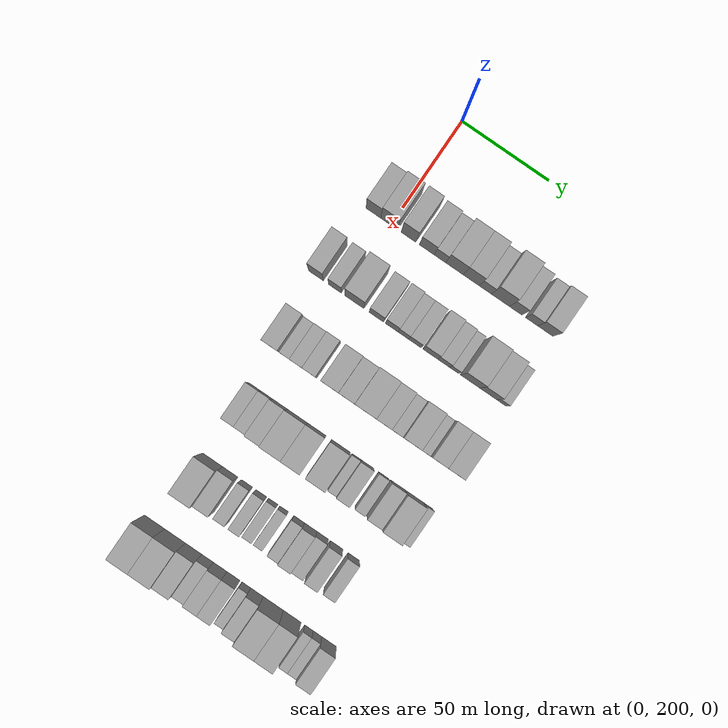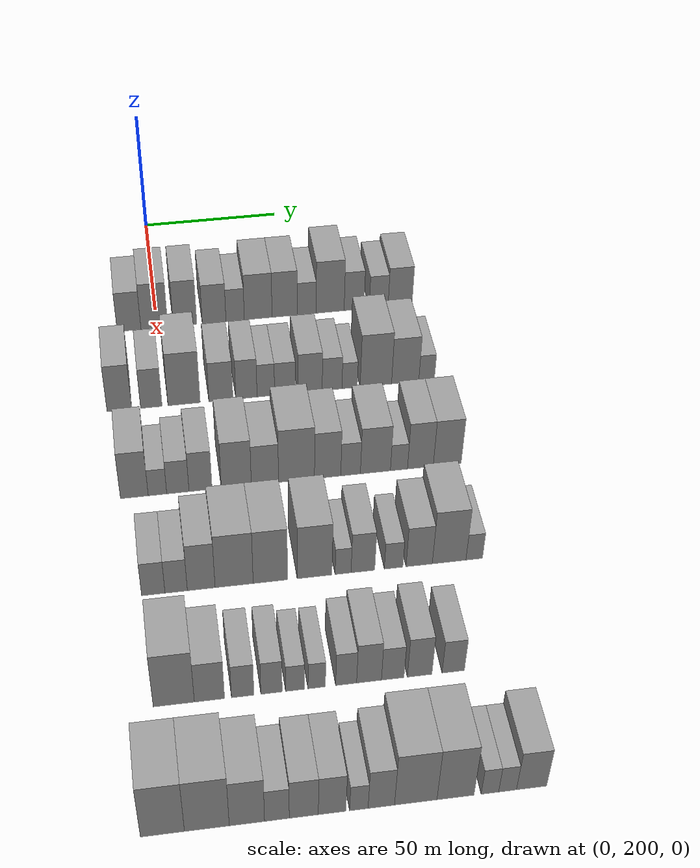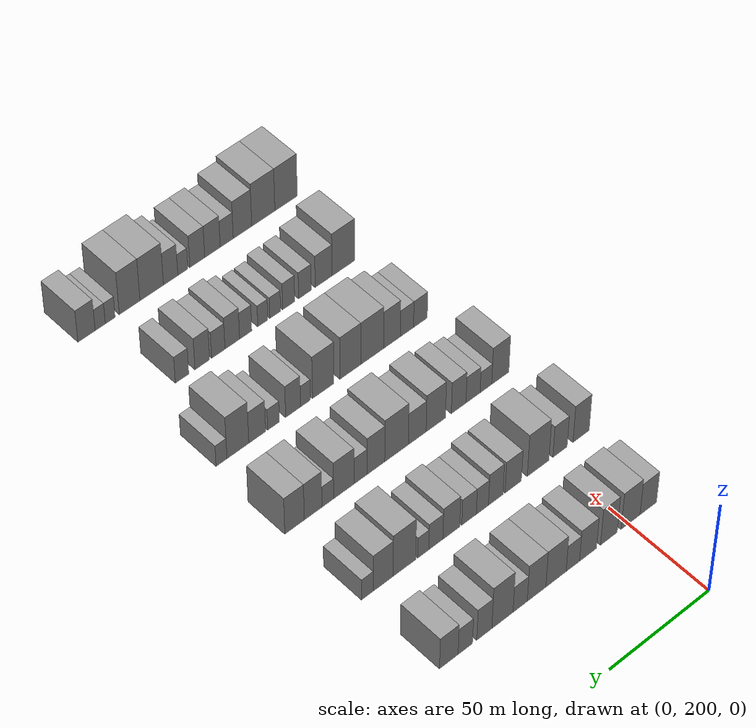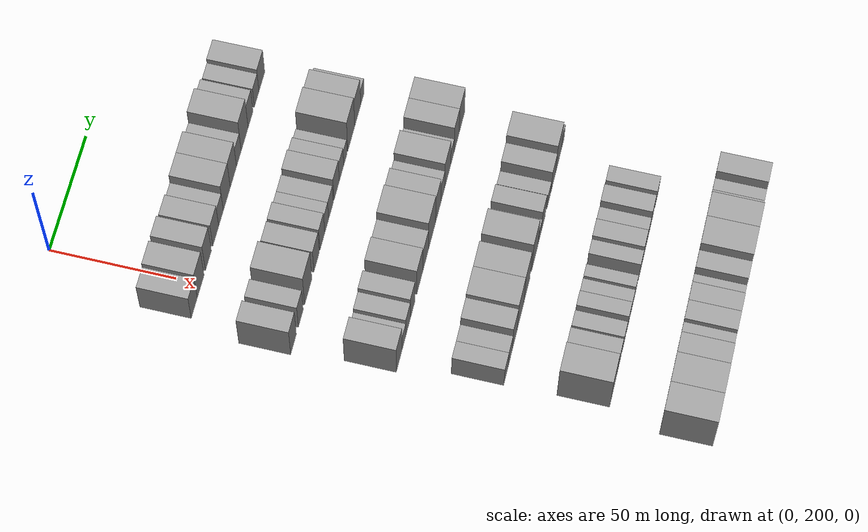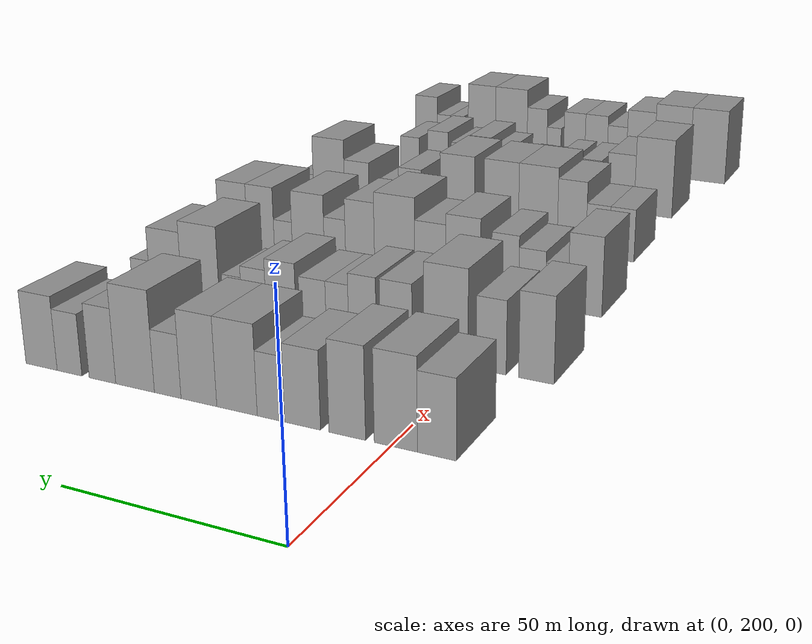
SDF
<sdf version="1.6">
 <world name="default">
  <model name="building_93">
   <static>1</static>
   <pose>50.0000 189.8528 0 0.000000 0.000000 0.000000</pose>
   <link name="link">
    <pose>0 0 9.00 0 0 0</pose>
    <collision name="collision"><geometry><box><size>20.0000 8.5246 18.0000</size></box></geometry></collision>
    <visual name="visual">
     <cast_shadows>0</cast_shadows>
     <geometry><box><size>20.0000 8.5246 18.0000</size></box></geometry>
     <material>
      <script>
       <uri>model://grey_wall/materials/scripts</uri>
       <uri>model://grey_wall/materials/textures</uri>
       <name>vrc/grey_wall</name>
      </script>
     </material>
    </visual>
   </link>
  </model>
  <model name="building_94">
   <static>1</static>
   <pose>50.0000 198.9547 0 0.000000 0.000000 0.000000</pose>
   <link name="link">
    <pose>0 0 10.50 0 0 0</pose>
    <collision name="collision"><geometry><box><size>20.0000 9.6792 21.0000</size></box></geometry></collision>
    <visual name="visual">
     <cast_shadows>0</cast_shadows>
     <geometry><box><size>20.0000 9.6792 21.0000</size></box></geometry>
     <material>
      <script>
       <uri>model://grey_wall/materials/scripts</uri>
       <uri>model://grey_wall/materials/textures</uri>
       <name>vrc/grey_wall</name>
      </script>
     </material>
    </visual>
   </link>
  </model>
  <model name="building_95">
   <static>1</static>
   <pose>50.0000 210.0387 0 0.000000 0.000000 0.000000</pose>
   <link name="link">
    <pose>0 0 10.50 0 0 0</pose>
    <collision name="collision"><geometry><box><size>20.0000 8.4889 21.0000</size></box></geometry></collision>
    <visual name="visual">
     <cast_shadows>0</cast_shadows>
     <geometry><box><size>20.0000 8.4889 21.0000</size></box></geometry>
     <material>
      <script>
       <uri>model://grey_wall/materials/scripts</uri>
       <uri>model://grey_wall/materials/textures</uri>
       <name>vrc/grey_wall</name>
      </script>
     </material>
    </visual>
   </link>
  </model>
  <model name="building_96">
   <static>1</static>
   <pose>50.0000 220.5793 0 0.000000 0.000000 0.000000</pose>
   <link name="link">
    <pose>0 0 9.00 0 0 0</pose>
    <collision name="collision"><geometry><box><size>20.0000 8.5923 18.0000</size></box></geometry></collision>
    <visual name="visual">
     <cast_shadows>0</cast_shadows>
     <geometry><box><size>20.0000 8.5923 18.0000</size></box></geometry>
     <material>
      <script>
       <uri>model://grey_wall/materials/scripts</uri>
       <uri>model://grey_wall/materials/textures</uri>
       <name>vrc/grey_wall</name>
      </script>
     </material>
    </visual>
   </link>
  </model>
  <model name="building_97">
   <static>1</static>
   <pose>50.0000 228.2194 0 0.000000 0.000000 0.000000</pose>
   <link name="link">
    <pose>0 0 7.50 0 0 0</pose>
    <collision name="collision"><geometry><box><size>20.0000 6.6878 15.0000</size></box></geometry></collision>
    <visual name="visual">
     <cast_shadows>0</cast_shadows>
     <geometry><box><size>20.0000 6.6878 15.0000</size></box></geometry>
     <material>
      <script>
       <uri>model://grey_wall/materials/scripts</uri>
       <uri>model://grey_wall/materials/textures</uri>
       <name>vrc/grey_wall</name>
      </script>
     </material>
    </visual>
   </link>
  </model>
  <model name="building_98">
   <static>1</static>
   <pose>50.0000 236.6185 0 0.000000 0.000000 0.000000</pose>
   <link name="link">
    <pose>0 0 10.50 0 0 0</pose>
    <collision name="collision"><geometry><box><size>20.0000 10.1104 21.0000</size></box></geometry></collision>
    <visual name="visual">
     <cast_shadows>0</cast_shadows>
     <geometry><box><size>20.0000 10.1104 21.0000</size></box></geometry>
     <material>
      <script>
       <uri>model://grey_wall/materials/scripts</uri>
       <uri>model://grey_wall/materials/textures</uri>
       <name>vrc/grey_wall</name>
      </script>
     </material>
    </visual>
   </link>
  </model>
  <model name="building_99">
   <static>1</static>
   <pose>50.0000 246.2642 0 0.000000 0.000000 0.000000</pose>
   <link name="link">
    <pose>0 0 10.50 0 0 0</pose>
    <collision name="collision"><geometry><box><size>20.0000 9.1811 21.0000</size></box></geometry></collision>
    <visual name="visual">
     <cast_shadows>0</cast_shadows>
     <geometry><box><size>20.0000 9.1811 21.0000</size></box></geometry>
     <material>
      <script>
       <uri>model://grey_wall/materials/scripts</uri>
       <uri>model://grey_wall/materials/textures</uri>
       <name>vrc/grey_wall</name>
      </script>
     </material>
    </visual>
   </link>
  </model>
  <model name="building_100">
   <static>1</static>
   <pose>50.0000 254.3415 0 0.000000 0.000000 0.000000</pose>
   <link name="link">
    <pose>0 0 7.50 0 0 0</pose>
    <collision name="collision"><geometry><box><size>20.0000 6.9734 15.0000</size></box></geometry></collision>
    <visual name="visual">
     <cast_shadows>0</cast_shadows>
     <geometry><box><size>20.0000 6.9734 15.0000</size></box></geometry>
     <material>
      <script>
       <uri>model://grey_wall/materials/scripts</uri>
       <uri>model://grey_wall/materials/textures</uri>
       <name>vrc/grey_wall</name>
      </script>
     </material>
    </visual>
   </link>
  </model>
  <model name="building_101">
   <static>1</static>
   <pose>50.0000 263.0122 0 0.000000 0.000000 0.000000</pose>
   <link name="link">
    <pose>0 0 12.00 0 0 0</pose>
    <collision name="collision"><geometry><box><size>20.0000 10.3681 24.0000</size></box></geometry></collision>
    <visual name="visual">
     <cast_shadows>0</cast_shadows>
     <geometry><box><size>20.0000 10.3681 24.0000</size></box></geometry>
     <material>
      <script>
       <uri>model://grey_wall/materials/scripts</uri>
       <uri>model://grey_wall/materials/textures</uri>
       <name>vrc/grey_wall</name>
      </script>
     </material>
    </visual>
   </link>
  </model>
  <model name="building_102">
   <static>1</static>
   <pose>50.0000 271.8606 0 0.000000 0.000000 0.000000</pose>
   <link name="link">
    <pose>0 0 9.00 0 0 0</pose>
    <collision name="collision"><geometry><box><size>20.0000 7.3289 18.0000</size></box></geometry></collision>
    <visual name="visual">
     <cast_shadows>0</cast_shadows>
     <geometry><box><size>20.0000 7.3289 18.0000</size></box></geometry>
     <material>
      <script>
       <uri>model://grey_wall/materials/scripts</uri>
       <uri>model://grey_wall/materials/textures</uri>
       <name>vrc/grey_wall</name>
      </script>
     </material>
    </visual>
   </link>
  </model>
  <model name="building_103">
   <static>1</static>
   <pose>50.0000 281.0077 0 0.000000 0.000000 0.000000</pose>
   <link name="link">
    <pose>0 0 7.50 0 0 0</pose>
    <collision name="collision"><geometry><box><size>20.0000 6.9652 15.0000</size></box></geometry></collision>
    <visual name="visual">
     <cast_shadows>0</cast_shadows>
     <geometry><box><size>20.0000 6.9652 15.0000</size></box></geometry>
     <material>
      <script>
       <uri>model://grey_wall/materials/scripts</uri>
       <uri>model://grey_wall/materials/textures</uri>
       <name>vrc/grey_wall</name>
      </script>
     </material>
    </visual>
   </link>
  </model>
  <model name="building_104">
   <static>1</static>
   <pose>50.0000 288.9499 0 0.000000 0.000000 0.000000</pose>
   <link name="link">
    <pose>0 0 9.00 0 0 0</pose>
    <collision name="collision"><geometry><box><size>20.0000 8.9192 18.0000</size></box></geometry></collision>
    <visual name="visual">
     <cast_shadows>0</cast_shadows>
     <geometry><box><size>20.0000 8.9192 18.0000</size></box></geometry>
     <material>
      <script>
       <uri>model://grey_wall/materials/scripts</uri>
       <uri>model://grey_wall/materials/textures</uri>
       <name>vrc/grey_wall</name>
      </script>
     </material>
    </visual>
   </link>
  </model>
  <model name="building_232">
   <static>1</static>
   <pose>90.0000 184.2462 0 0.000000 0.000000 0.000000</pose>
   <link name="link">
    <pose>0 0 10.50 0 0 0</pose>
    <collision name="collision"><geometry><box><size>20.0000 8.4179 21.0000</size></box></geometry></collision>
    <visual name="visual">
     <cast_shadows>0</cast_shadows>
     <geometry><box><size>20.0000 8.4179 21.0000</size></box></geometry>
     <material>
      <script>
       <uri>model://grey_wall/materials/scripts</uri>
       <uri>model://grey_wall/materials/textures</uri>
       <name>vrc/grey_wall</name>
      </script>
     </material>
    </visual>
   </link>
  </model>
  <model name="building_233">
   <static>1</static>
   <pose>90.0000 195.1250 0 0.000000 0.000000 0.000000</pose>
   <link name="link">
    <pose>0 0 9.00 0 0 0</pose>
    <collision name="collision"><geometry><box><size>20.0000 7.3397 18.0000</size></box></geometry></collision>
    <visual name="visual">
     <cast_shadows>0</cast_shadows>
     <geometry><box><size>20.0000 7.3397 18.0000</size></box></geometry>
     <material>
      <script>
       <uri>model://grey_wall/materials/scripts</uri>
       <uri>model://grey_wall/materials/textures</uri>
       <name>vrc/grey_wall</name>
      </script>
     </material>
    </visual>
   </link>
  </model>
  <model name="building_234">
   <static>1</static>
   <pose>90.0000 206.3223 0 0.000000 0.000000 0.000000</pose>
   <link name="link">
    <pose>0 0 12.00 0 0 0</pose>
    <collision name="collision"><geometry><box><size>20.0000 11.0550 24.0000</size></box></geometry></collision>
    <visual name="visual">
     <cast_shadows>0</cast_shadows>
     <geometry><box><size>20.0000 11.0550 24.0000</size></box></geometry>
     <material>
      <script>
       <uri>model://grey_wall/materials/scripts</uri>
       <uri>model://grey_wall/materials/textures</uri>
       <name>vrc/grey_wall</name>
      </script>
     </material>
    </visual>
   </link>
  </model>
  <model name="building_235">
   <static>1</static>
   <pose>90.0000 218.9924 0 0.000000 0.000000 0.000000</pose>
   <link name="link">
    <pose>0 0 9.00 0 0 0</pose>
    <collision name="collision"><geometry><box><size>20.0000 8.2851 18.0000</size></box></geometry></collision>
    <visual name="visual">
     <cast_shadows>0</cast_shadows>
     <geometry><box><size>20.0000 8.2851 18.0000</size></box></geometry>
     <material>
      <script>
       <uri>model://grey_wall/materials/scripts</uri>
       <uri>model://grey_wall/materials/textures</uri>
       <name>vrc/grey_wall</name>
      </script>
     </material>
    </visual>
   </link>
  </model>
  <model name="building_236">
   <static>1</static>
   <pose>90.0000 227.7910 0 0.000000 0.000000 0.000000</pose>
   <link name="link">
    <pose>0 0 9.00 0 0 0</pose>
    <collision name="collision"><geometry><box><size>20.0000 7.3121 18.0000</size></box></geometry></collision>
    <visual name="visual">
     <cast_shadows>0</cast_shadows>
     <geometry><box><size>20.0000 7.3121 18.0000</size></box></geometry>
     <material>
      <script>
       <uri>model://grey_wall/materials/scripts</uri>
       <uri>model://grey_wall/materials/textures</uri>
       <name>vrc/grey_wall</name>
      </script>
     </material>
    </visual>
   </link>
  </model>
  <model name="building_237">
   <static>1</static>
   <pose>90.0000 234.4759 0 0.000000 0.000000 0.000000</pose>
   <link name="link">
    <pose>0 0 7.50 0 0 0</pose>
    <collision name="collision"><geometry><box><size>20.0000 6.0578 15.0000</size></box></geometry></collision>
    <visual name="visual">
     <cast_shadows>0</cast_shadows>
     <geometry><box><size>20.0000 6.0578 15.0000</size></box></geometry>
     <material>
      <script>
       <uri>model://grey_wall/materials/scripts</uri>
       <uri>model://grey_wall/materials/textures</uri>
       <name>vrc/grey_wall</name>
      </script>
     </material>
    </visual>
   </link>
  </model>
  <model name="building_238">
   <static>1</static>
   <pose>90.0000 241.1031 0 0.000000 0.000000 0.000000</pose>
   <link name="link">
    <pose>0 0 7.50 0 0 0</pose>
    <collision name="collision"><geometry><box><size>20.0000 7.1966 15.0000</size></box></geometry></collision>
    <visual name="visual">
     <cast_shadows>0</cast_shadows>
     <geometry><box><size>20.0000 7.1966 15.0000</size></box></geometry>
     <material>
      <script>
       <uri>model://grey_wall/materials/scripts</uri>
       <uri>model://grey_wall/materials/textures</uri>
       <name>vrc/grey_wall</name>
      </script>
     </material>
    </visual>
   </link>
  </model>
  <model name="building_239">
   <static>1</static>
   <pose>90.0000 249.8840 0 0.000000 0.000000 0.000000</pose>
   <link name="link">
    <pose>0 0 9.00 0 0 0</pose>
    <collision name="collision"><geometry><box><size>20.0000 8.3651 18.0000</size></box></geometry></collision>
    <visual name="visual">
     <cast_shadows>0</cast_shadows>
     <geometry><box><size>20.0000 8.3651 18.0000</size></box></geometry>
     <material>
      <script>
       <uri>model://grey_wall/materials/scripts</uri>
       <uri>model://grey_wall/materials/textures</uri>
       <name>vrc/grey_wall</name>
      </script>
     </material>
    </visual>
   </link>
  </model>
  <model name="building_240">
   <static>1</static>
   <pose>90.0000 257.5307 0 0.000000 0.000000 0.000000</pose>
   <link name="link">
    <pose>0 0 7.50 0 0 0</pose>
    <collision name="collision"><geometry><box><size>20.0000 6.9283 15.0000</size></box></geometry></collision>
    <visual name="visual">
     <cast_shadows>0</cast_shadows>
     <geometry><box><size>20.0000 6.9283 15.0000</size></box></geometry>
     <material>
      <script>
       <uri>model://grey_wall/materials/scripts</uri>
       <uri>model://grey_wall/materials/textures</uri>
       <name>vrc/grey_wall</name>
      </script>
     </material>
    </visual>
   </link>
  </model>
  <model name="building_241">
   <static>1</static>
   <pose>90.0000 263.6832 0 0.000000 0.000000 0.000000</pose>
   <link name="link">
    <pose>0 0 6.00 0 0 0</pose>
    <collision name="collision"><geometry><box><size>20.0000 5.3765 12.0000</size></box></geometry></collision>
    <visual name="visual">
     <cast_shadows>0</cast_shadows>
     <geometry><box><size>20.0000 5.3765 12.0000</size></box></geometry>
     <material>
      <script>
       <uri>model://grey_wall/materials/scripts</uri>
       <uri>model://grey_wall/materials/textures</uri>
       <name>vrc/grey_wall</name>
      </script>
     </material>
    </visual>
   </link>
  </model>
  <model name="building_242">
   <static>1</static>
   <pose>90.0000 272.8905 0 0.000000 0.000000 0.000000</pose>
   <link name="link">
    <pose>0 0 12.00 0 0 0</pose>
    <collision name="collision"><geometry><box><size>20.0000 11.0382 24.0000</size></box></geometry></collision>
    <visual name="visual">
     <cast_shadows>0</cast_shadows>
     <geometry><box><size>20.0000 11.0382 24.0000</size></box></geometry>
     <material>
      <script>
       <uri>model://grey_wall/materials/scripts</uri>
       <uri>model://grey_wall/materials/textures</uri>
       <name>vrc/grey_wall</name>
      </script>
     </material>
    </visual>
   </link>
  </model>
  <model name="building_243">
   <static>1</static>
   <pose>90.0000 283.2182 0 0.000000 0.000000 0.000000</pose>
   <link name="link">
    <pose>0 0 10.50 0 0 0</pose>
    <collision name="collision"><geometry><box><size>20.0000 9.6172 21.0000</size></box></geometry></collision>
    <visual name="visual">
     <cast_shadows>0</cast_shadows>
     <geometry><box><size>20.0000 9.6172 21.0000</size></box></geometry>
     <material>
      <script>
       <uri>model://grey_wall/materials/scripts</uri>
       <uri>model://grey_wall/materials/textures</uri>
       <name>vrc/grey_wall</name>
      </script>
     </material>
    </visual>
   </link>
  </model>
  <model name="building_244">
   <static>1</static>
   <pose>90.0000 290.7925 0 0.000000 0.000000 0.000000</pose>
   <link name="link">
    <pose>0 0 6.00 0 0 0</pose>
    <collision name="collision"><geometry><box><size>20.0000 5.5314 12.0000</size></box></geometry></collision>
    <visual name="visual">
     <cast_shadows>0</cast_shadows>
     <geometry><box><size>20.0000 5.5314 12.0000</size></box></geometry>
     <material>
      <script>
       <uri>model://grey_wall/materials/scripts</uri>
       <uri>model://grey_wall/materials/textures</uri>
       <name>vrc/grey_wall</name>
      </script>
     </material>
    </visual>
   </link>
  </model>
  <model name="building_371">
   <static>1</static>
   <pose>130.0000 186.9052 0 0.000000 0.000000 0.000000</pose>
   <link name="link">
    <pose>0 0 10.50 0 0 0</pose>
    <collision name="collision"><geometry><box><size>20.0000 8.9294 21.0000</size></box></geometry></collision>
    <visual name="visual">
     <cast_shadows>0</cast_shadows>
     <geometry><box><size>20.0000 8.9294 21.0000</size></box></geometry>
     <material>
      <script>
       <uri>model://grey_wall/materials/scripts</uri>
       <uri>model://grey_wall/materials/textures</uri>
       <name>vrc/grey_wall</name>
      </script>
     </material>
    </visual>
   </link>
  </model>
  <model name="building_372">
   <static>1</static>
   <pose>130.0000 194.3571 0 0.000000 0.000000 0.000000</pose>
   <link name="link">
    <pose>0 0 6.00 0 0 0</pose>
    <collision name="collision"><geometry><box><size>20.0000 5.9744 12.0000</size></box></geometry></collision>
    <visual name="visual">
     <cast_shadows>0</cast_shadows>
     <geometry><box><size>20.0000 5.9744 12.0000</size></box></geometry>
     <material>
      <script>
       <uri>model://grey_wall/materials/scripts</uri>
       <uri>model://grey_wall/materials/textures</uri>
       <name>vrc/grey_wall</name>
      </script>
     </material>
    </visual>
   </link>
  </model>
  <model name="building_373">
   <static>1</static>
   <pose>130.0000 200.9504 0 0.000000 0.000000 0.000000</pose>
   <link name="link">
    <pose>0 0 7.50 0 0 0</pose>
    <collision name="collision"><geometry><box><size>20.0000 7.2123 15.0000</size></box></geometry></collision>
    <visual name="visual">
     <cast_shadows>0</cast_shadows>
     <geometry><box><size>20.0000 7.2123 15.0000</size></box></geometry>
     <material>
      <script>
       <uri>model://grey_wall/materials/scripts</uri>
       <uri>model://grey_wall/materials/textures</uri>
       <name>vrc/grey_wall</name>
      </script>
     </material>
    </visual>
   </link>
  </model>
  <model name="building_374">
   <static>1</static>
   <pose>130.0000 208.3010 0 0.000000 0.000000 0.000000</pose>
   <link name="link">
    <pose>0 0 9.00 0 0 0</pose>
    <collision name="collision"><geometry><box><size>20.0000 7.4889 18.0000</size></box></geometry></collision>
    <visual name="visual">
     <cast_shadows>0</cast_shadows>
     <geometry><box><size>20.0000 7.4889 18.0000</size></box></geometry>
     <material>
      <script>
       <uri>model://grey_wall/materials/scripts</uri>
       <uri>model://grey_wall/materials/textures</uri>
       <name>vrc/grey_wall</name>
      </script>
     </material>
    </visual>
   </link>
  </model>
  <model name="building_375">
   <static>1</static>
   <pose>130.0000 219.9308 0 0.000000 0.000000 0.000000</pose>
   <link name="link">
    <pose>0 0 10.50 0 0 0</pose>
    <collision name="collision"><geometry><box><size>20.0000 9.7706 21.0000</size></box></geometry></collision>
    <visual name="visual">
     <cast_shadows>0</cast_shadows>
     <geometry><box><size>20.0000 9.7706 21.0000</size></box></geometry>
     <material>
      <script>
       <uri>model://grey_wall/materials/scripts</uri>
       <uri>model://grey_wall/materials/textures</uri>
       <name>vrc/grey_wall</name>
      </script>
     </material>
    </visual>
   </link>
  </model>
  <model name="building_376">
   <static>1</static>
   <pose>130.0000 229.2615 0 0.000000 0.000000 0.000000</pose>
   <link name="link">
    <pose>0 0 9.00 0 0 0</pose>
    <collision name="collision"><geometry><box><size>20.0000 8.8908 18.0000</size></box></geometry></collision>
    <visual name="visual">
     <cast_shadows>0</cast_shadows>
     <geometry><box><size>20.0000 8.8908 18.0000</size></box></geometry>
     <material>
      <script>
       <uri>model://grey_wall/materials/scripts</uri>
       <uri>model://grey_wall/materials/textures</uri>
       <name>vrc/grey_wall</name>
      </script>
     </material>
    </visual>
   </link>
  </model>
  <model name="building_377">
   <static>1</static>
   <pose>130.0000 239.6109 0 0.000000 0.000000 0.000000</pose>
   <link name="link">
    <pose>0 0 12.00 0 0 0</pose>
    <collision name="collision"><geometry><box><size>20.0000 11.8081 24.0000</size></box></geometry></collision>
    <visual name="visual">
     <cast_shadows>0</cast_shadows>
     <geometry><box><size>20.0000 11.8081 24.0000</size></box></geometry>
     <material>
      <script>
       <uri>model://grey_wall/materials/scripts</uri>
       <uri>model://grey_wall/materials/textures</uri>
       <name>vrc/grey_wall</name>
      </script>
     </material>
    </visual>
   </link>
  </model>
  <model name="building_378">
   <static>1</static>
   <pose>130.0000 249.8597 0 0.000000 0.000000 0.000000</pose>
   <link name="link">
    <pose>0 0 10.50 0 0 0</pose>
    <collision name="collision"><geometry><box><size>20.0000 8.6896 21.0000</size></box></geometry></collision>
    <visual name="visual">
     <cast_shadows>0</cast_shadows>
     <geometry><box><size>20.0000 8.6896 21.0000</size></box></geometry>
     <material>
      <script>
       <uri>model://grey_wall/materials/scripts</uri>
       <uri>model://grey_wall/materials/textures</uri>
       <name>vrc/grey_wall</name>
      </script>
     </material>
    </visual>
   </link>
  </model>
  <model name="building_379">
   <static>1</static>
   <pose>130.0000 257.4490 0 0.000000 0.000000 0.000000</pose>
   <link name="link">
    <pose>0 0 7.50 0 0 0</pose>
    <collision name="collision"><geometry><box><size>20.0000 6.4889 15.0000</size></box></geometry></collision>
    <visual name="visual">
     <cast_shadows>0</cast_shadows>
     <geometry><box><size>20.0000 6.4889 15.0000</size></box></geometry>
     <material>
      <script>
       <uri>model://grey_wall/materials/scripts</uri>
       <uri>model://grey_wall/materials/textures</uri>
       <name>vrc/grey_wall</name>
      </script>
     </material>
    </visual>
   </link>
  </model>
  <model name="building_380">
   <static>1</static>
   <pose>130.0000 265.6832 0 0.000000 0.000000 0.000000</pose>
   <link name="link">
    <pose>0 0 10.50 0 0 0</pose>
    <collision name="collision"><geometry><box><size>20.0000 9.9795 21.0000</size></box></geometry></collision>
    <visual name="visual">
     <cast_shadows>0</cast_shadows>
     <geometry><box><size>20.0000 9.9795 21.0000</size></box></geometry>
     <material>
      <script>
       <uri>model://grey_wall/materials/scripts</uri>
       <uri>model://grey_wall/materials/textures</uri>
       <name>vrc/grey_wall</name>
      </script>
     </material>
    </visual>
   </link>
  </model>
  <model name="building_381">
   <static>1</static>
   <pose>130.0000 273.5120 0 0.000000 0.000000 0.000000</pose>
   <link name="link">
    <pose>0 0 6.00 0 0 0</pose>
    <collision name="collision"><geometry><box><size>20.0000 5.6781 12.0000</size></box></geometry></collision>
    <visual name="visual">
     <cast_shadows>0</cast_shadows>
     <geometry><box><size>20.0000 5.6781 12.0000</size></box></geometry>
     <material>
      <script>
       <uri>model://grey_wall/materials/scripts</uri>
       <uri>model://grey_wall/materials/textures</uri>
       <name>vrc/grey_wall</name>
      </script>
     </material>
    </visual>
   </link>
  </model>
  <model name="building_382">
   <static>1</static>
   <pose>130.0000 280.6457 0 0.000000 0.000000 0.000000</pose>
   <link name="link">
    <pose>0 0 10.50 0 0 0</pose>
    <collision name="collision"><geometry><box><size>20.0000 8.5892 21.0000</size></box></geometry></collision>
    <visual name="visual">
     <cast_shadows>0</cast_shadows>
     <geometry><box><size>20.0000 8.5892 21.0000</size></box></geometry>
     <material>
      <script>
       <uri>model://grey_wall/materials/scripts</uri>
       <uri>model://grey_wall/materials/textures</uri>
       <name>vrc/grey_wall</name>
      </script>
     </material>
    </visual>
   </link>
  </model>
  <model name="building_383">
   <static>1</static>
   <pose>130.0000 289.6235 0 0.000000 0.000000 0.000000</pose>
   <link name="link">
    <pose>0 0 10.50 0 0 0</pose>
    <collision name="collision"><geometry><box><size>20.0000 9.3665 21.0000</size></box></geometry></collision>
    <visual name="visual">
     <cast_shadows>0</cast_shadows>
     <geometry><box><size>20.0000 9.3665 21.0000</size></box></geometry>
     <material>
      <script>
       <uri>model://grey_wall/materials/scripts</uri>
       <uri>model://grey_wall/materials/textures</uri>
       <name>vrc/grey_wall</name>
      </script>
     </material>
    </visual>
   </link>
  </model>
  <model name="building_504">
   <static>1</static>
   <pose>170.0000 190.2425 0 0.000000 0.000000 0.000000</pose>
   <link name="link">
    <pose>0 0 7.50 0 0 0</pose>
    <collision name="collision"><geometry><box><size>20.0000 7.0971 15.0000</size></box></geometry></collision>
    <visual name="visual">
     <cast_shadows>0</cast_shadows>
     <geometry><box><size>20.0000 7.0971 15.0000</size></box></geometry>
     <material>
      <script>
       <uri>model://grey_wall/materials/scripts</uri>
       <uri>model://grey_wall/materials/textures</uri>
       <name>vrc/grey_wall</name>
      </script>
     </material>
    </visual>
   </link>
  </model>
  <model name="building_505">
   <static>1</static>
   <pose>170.0000 197.1912 0 0.000000 0.000000 0.000000</pose>
   <link name="link">
    <pose>0 0 7.50 0 0 0</pose>
    <collision name="collision"><geometry><box><size>20.0000 6.8003 15.0000</size></box></geometry></collision>
    <visual name="visual">
     <cast_shadows>0</cast_shadows>
     <geometry><box><size>20.0000 6.8003 15.0000</size></box></geometry>
     <material>
      <script>
       <uri>model://grey_wall/materials/scripts</uri>
       <uri>model://grey_wall/materials/textures</uri>
       <name>vrc/grey_wall</name>
      </script>
     </material>
    </visual>
   </link>
  </model>
  <model name="building_506">
   <static>1</static>
   <pose>170.0000 204.8311 0 0.000000 0.000000 0.000000</pose>
   <link name="link">
    <pose>0 0 10.50 0 0 0</pose>
    <collision name="collision"><geometry><box><size>20.0000 8.4793 21.0000</size></box></geometry></collision>
    <visual name="visual">
     <cast_shadows>0</cast_shadows>
     <geometry><box><size>20.0000 8.4793 21.0000</size></box></geometry>
     <material>
      <script>
       <uri>model://grey_wall/materials/scripts</uri>
       <uri>model://grey_wall/materials/textures</uri>
       <name>vrc/grey_wall</name>
      </script>
     </material>
    </visual>
   </link>
  </model>
  <model name="building_507">
   <static>1</static>
   <pose>170.0000 214.9065 0 0.000000 0.000000 0.000000</pose>
   <link name="link">
    <pose>0 0 12.00 0 0 0</pose>
    <collision name="collision"><geometry><box><size>20.0000 11.6716 24.0000</size></box></geometry></collision>
    <visual name="visual">
     <cast_shadows>0</cast_shadows>
     <geometry><box><size>20.0000 11.6716 24.0000</size></box></geometry>
     <material>
      <script>
       <uri>model://grey_wall/materials/scripts</uri>
       <uri>model://grey_wall/materials/textures</uri>
       <name>vrc/grey_wall</name>
      </script>
     </material>
    </visual>
   </link>
  </model>
  <model name="building_508">
   <static>1</static>
   <pose>170.0000 226.0292 0 0.000000 0.000000 0.000000</pose>
   <link name="link">
    <pose>0 0 12.00 0 0 0</pose>
    <collision name="collision"><geometry><box><size>20.0000 10.5738 24.0000</size></box></geometry></collision>
    <visual name="visual">
     <cast_shadows>0</cast_shadows>
     <geometry><box><size>20.0000 10.5738 24.0000</size></box></geometry>
     <material>
      <script>
       <uri>model://grey_wall/materials/scripts</uri>
       <uri>model://grey_wall/materials/textures</uri>
       <name>vrc/grey_wall</name>
      </script>
     </material>
    </visual>
   </link>
  </model>
  <model name="building_509">
   <static>1</static>
   <pose>170.0000 239.6942 0 0.000000 0.000000 0.000000</pose>
   <link name="link">
    <pose>0 0 12.00 0 0 0</pose>
    <collision name="collision"><geometry><box><size>20.0000 10.7561 24.0000</size></box></geometry></collision>
    <visual name="visual">
     <cast_shadows>0</cast_shadows>
     <geometry><box><size>20.0000 10.7561 24.0000</size></box></geometry>
     <material>
      <script>
       <uri>model://grey_wall/materials/scripts</uri>
       <uri>model://grey_wall/materials/textures</uri>
       <name>vrc/grey_wall</name>
      </script>
     </material>
    </visual>
   </link>
  </model>
  <model name="building_510">
   <static>1</static>
   <pose>170.0000 248.5505 0 0.000000 0.000000 0.000000</pose>
   <link name="link">
    <pose>0 0 6.00 0 0 0</pose>
    <collision name="collision"><geometry><box><size>20.0000 4.9565 12.0000</size></box></geometry></collision>
    <visual name="visual">
     <cast_shadows>0</cast_shadows>
     <geometry><box><size>20.0000 4.9565 12.0000</size></box></geometry>
     <material>
      <script>
       <uri>model://grey_wall/materials/scripts</uri>
       <uri>model://grey_wall/materials/textures</uri>
       <name>vrc/grey_wall</name>
      </script>
     </material>
    </visual>
   </link>
  </model>
  <model name="building_511">
   <static>1</static>
   <pose>170.0000 254.7235 0 0.000000 0.000000 0.000000</pose>
   <link name="link">
    <pose>0 0 9.00 0 0 0</pose>
    <collision name="collision"><geometry><box><size>20.0000 7.3895 18.0000</size></box></geometry></collision>
    <visual name="visual">
     <cast_shadows>0</cast_shadows>
     <geometry><box><size>20.0000 7.3895 18.0000</size></box></geometry>
     <material>
      <script>
       <uri>model://grey_wall/materials/scripts</uri>
       <uri>model://grey_wall/materials/textures</uri>
       <name>vrc/grey_wall</name>
      </script>
     </material>
    </visual>
   </link>
  </model>
  <model name="building_512">
   <static>1</static>
   <pose>170.0000 264.3219 0 0.000000 0.000000 0.000000</pose>
   <link name="link">
    <pose>0 0 6.00 0 0 0</pose>
    <collision name="collision"><geometry><box><size>20.0000 5.8072 12.0000</size></box></geometry></collision>
    <visual name="visual">
     <cast_shadows>0</cast_shadows>
     <geometry><box><size>20.0000 5.8072 12.0000</size></box></geometry>
     <material>
      <script>
       <uri>model://grey_wall/materials/scripts</uri>
       <uri>model://grey_wall/materials/textures</uri>
       <name>vrc/grey_wall</name>
      </script>
     </material>
    </visual>
   </link>
  </model>
  <model name="building_513">
   <static>1</static>
   <pose>170.0000 272.3450 0 0.000000 0.000000 0.000000</pose>
   <link name="link">
    <pose>0 0 9.00 0 0 0</pose>
    <collision name="collision"><geometry><box><size>20.0000 8.2391 18.0000</size></box></geometry></collision>
    <visual name="visual">
     <cast_shadows>0</cast_shadows>
     <geometry><box><size>20.0000 8.2391 18.0000</size></box></geometry>
     <material>
      <script>
       <uri>model://grey_wall/materials/scripts</uri>
       <uri>model://grey_wall/materials/textures</uri>
       <name>vrc/grey_wall</name>
      </script>
     </material>
    </visual>
   </link>
  </model>
  <model name="building_514">
   <static>1</static>
   <pose>170.0000 281.7713 0 0.000000 0.000000 0.000000</pose>
   <link name="link">
    <pose>0 0 12.00 0 0 0</pose>
    <collision name="collision"><geometry><box><size>20.0000 10.6135 24.0000</size></box></geometry></collision>
    <visual name="visual">
     <cast_shadows>0</cast_shadows>
     <geometry><box><size>20.0000 10.6135 24.0000</size></box></geometry>
     <material>
      <script>
       <uri>model://grey_wall/materials/scripts</uri>
       <uri>model://grey_wall/materials/textures</uri>
       <name>vrc/grey_wall</name>
      </script>
     </material>
    </visual>
   </link>
  </model>
  <model name="building_515">
   <static>1</static>
   <pose>170.0000 289.7008 0 0.000000 0.000000 0.000000</pose>
   <link name="link">
    <pose>0 0 6.00 0 0 0</pose>
    <collision name="collision"><geometry><box><size>20.0000 5.2456 12.0000</size></box></geometry></collision>
    <visual name="visual">
     <cast_shadows>0</cast_shadows>
     <geometry><box><size>20.0000 5.2456 12.0000</size></box></geometry>
     <material>
      <script>
       <uri>model://grey_wall/materials/scripts</uri>
       <uri>model://grey_wall/materials/textures</uri>
       <name>vrc/grey_wall</name>
      </script>
     </material>
    </visual>
   </link>
  </model>
  <model name="building_643">
   <static>1</static>
   <pose>210.0000 193.3110 0 0.000000 0.000000 0.000000</pose>
   <link name="link">
    <pose>0 0 12.00 0 0 0</pose>
    <collision name="collision"><geometry><box><size>20.0000 11.7228 24.0000</size></box></geometry></collision>
    <visual name="visual">
     <cast_shadows>0</cast_shadows>
     <geometry><box><size>20.0000 11.7228 24.0000</size></box></geometry>
     <material>
      <script>
       <uri>model://grey_wall/materials/scripts</uri>
       <uri>model://grey_wall/materials/textures</uri>
       <name>vrc/grey_wall</name>
      </script>
     </material>
    </visual>
   </link>
  </model>
  <model name="building_644">
   <static>1</static>
   <pose>210.0000 203.4968 0 0.000000 0.000000 0.000000</pose>
   <link name="link">
    <pose>0 0 9.00 0 0 0</pose>
    <collision name="collision"><geometry><box><size>20.0000 8.6487 18.0000</size></box></geometry></collision>
    <visual name="visual">
     <cast_shadows>0</cast_shadows>
     <geometry><box><size>20.0000 8.6487 18.0000</size></box></geometry>
     <material>
      <script>
       <uri>model://grey_wall/materials/scripts</uri>
       <uri>model://grey_wall/materials/textures</uri>
       <name>vrc/grey_wall</name>
      </script>
     </material>
    </visual>
   </link>
  </model>
  <model name="building_645">
   <static>1</static>
   <pose>210.0000 213.0498 0 0.000000 0.000000 0.000000</pose>
   <link name="link">
    <pose>0 0 7.50 0 0 0</pose>
    <collision name="collision"><geometry><box><size>20.0000 6.4574 15.0000</size></box></geometry></collision>
    <visual name="visual">
     <cast_shadows>0</cast_shadows>
     <geometry><box><size>20.0000 6.4574 15.0000</size></box></geometry>
     <material>
      <script>
       <uri>model://grey_wall/materials/scripts</uri>
       <uri>model://grey_wall/materials/textures</uri>
       <name>vrc/grey_wall</name>
      </script>
     </material>
    </visual>
   </link>
  </model>
  <model name="building_646">
   <static>1</static>
   <pose>210.0000 221.3531 0 0.000000 0.000000 0.000000</pose>
   <link name="link">
    <pose>0 0 7.50 0 0 0</pose>
    <collision name="collision"><geometry><box><size>20.0000 6.1493 15.0000</size></box></geometry></collision>
    <visual name="visual">
     <cast_shadows>0</cast_shadows>
     <geometry><box><size>20.0000 6.1493 15.0000</size></box></geometry>
     <material>
      <script>
       <uri>model://grey_wall/materials/scripts</uri>
       <uri>model://grey_wall/materials/textures</uri>
       <name>vrc/grey_wall</name>
      </script>
     </material>
    </visual>
   </link>
  </model>
  <model name="building_647">
   <static>1</static>
   <pose>210.0000 228.1708 0 0.000000 0.000000 0.000000</pose>
   <link name="link">
    <pose>0 0 6.00 0 0 0</pose>
    <collision name="collision"><geometry><box><size>20.0000 5.4861 12.0000</size></box></geometry></collision>
    <visual name="visual">
     <cast_shadows>0</cast_shadows>
     <geometry><box><size>20.0000 5.4861 12.0000</size></box></geometry>
     <material>
      <script>
       <uri>model://grey_wall/materials/scripts</uri>
       <uri>model://grey_wall/materials/textures</uri>
       <name>vrc/grey_wall</name>
      </script>
     </material>
    </visual>
   </link>
  </model>
  <model name="building_648">
   <static>1</static>
   <pose>210.0000 234.4393 0 0.000000 0.000000 0.000000</pose>
   <link name="link">
    <pose>0 0 6.00 0 0 0</pose>
    <collision name="collision"><geometry><box><size>20.0000 5.0508 12.0000</size></box></geometry></collision>
    <visual name="visual">
     <cast_shadows>0</cast_shadows>
     <geometry><box><size>20.0000 5.0508 12.0000</size></box></geometry>
     <material>
      <script>
       <uri>model://grey_wall/materials/scripts</uri>
       <uri>model://grey_wall/materials/textures</uri>
       <name>vrc/grey_wall</name>
      </script>
     </material>
    </visual>
   </link>
  </model>
  <model name="building_649">
   <static>1</static>
   <pose>210.0000 243.0155 0 0.000000 0.000000 0.000000</pose>
   <link name="link">
    <pose>0 0 7.50 0 0 0</pose>
    <collision name="collision"><geometry><box><size>20.0000 6.1017 15.0000</size></box></geometry></collision>
    <visual name="visual">
     <cast_shadows>0</cast_shadows>
     <geometry><box><size>20.0000 6.1017 15.0000</size></box></geometry>
     <material>
      <script>
       <uri>model://grey_wall/materials/scripts</uri>
       <uri>model://grey_wall/materials/textures</uri>
       <name>vrc/grey_wall</name>
      </script>
     </material>
    </visual>
   </link>
  </model>
  <model name="building_650">
   <static>1</static>
   <pose>210.0000 249.6984 0 0.000000 0.000000 0.000000</pose>
   <link name="link">
    <pose>0 0 9.00 0 0 0</pose>
    <collision name="collision"><geometry><box><size>20.0000 7.2640 18.0000</size></box></geometry></collision>
    <visual name="visual">
     <cast_shadows>0</cast_shadows>
     <geometry><box><size>20.0000 7.2640 18.0000</size></box></geometry>
     <material>
      <script>
       <uri>model://grey_wall/materials/scripts</uri>
       <uri>model://grey_wall/materials/textures</uri>
       <name>vrc/grey_wall</name>
      </script>
     </material>
    </visual>
   </link>
  </model>
  <model name="building_651">
   <static>1</static>
   <pose>210.0000 256.6418 0 0.000000 0.000000 0.000000</pose>
   <link name="link">
    <pose>0 0 7.50 0 0 0</pose>
    <collision name="collision"><geometry><box><size>20.0000 6.6228 15.0000</size></box></geometry></collision>
    <visual name="visual">
     <cast_shadows>0</cast_shadows>
     <geometry><box><size>20.0000 6.6228 15.0000</size></box></geometry>
     <material>
      <script>
       <uri>model://grey_wall/materials/scripts</uri>
       <uri>model://grey_wall/materials/textures</uri>
       <name>vrc/grey_wall</name>
      </script>
     </material>
    </visual>
   </link>
  </model>
  <model name="building_652">
   <static>1</static>
   <pose>210.0000 264.5712 0 0.000000 0.000000 0.000000</pose>
   <link name="link">
    <pose>0 0 9.00 0 0 0</pose>
    <collision name="collision"><geometry><box><size>20.0000 7.2360 18.0000</size></box></geometry></collision>
    <visual name="visual">
     <cast_shadows>0</cast_shadows>
     <geometry><box><size>20.0000 7.2360 18.0000</size></box></geometry>
     <material>
      <script>
       <uri>model://grey_wall/materials/scripts</uri>
       <uri>model://grey_wall/materials/textures</uri>
       <name>vrc/grey_wall</name>
      </script>
     </material>
    </visual>
   </link>
  </model>
  <model name="building_653">
   <static>1</static>
   <pose>210.0000 274.4937 0 0.000000 0.000000 0.000000</pose>
   <link name="link">
    <pose>0 0 7.50 0 0 0</pose>
    <collision name="collision"><geometry><box><size>20.0000 6.6090 15.0000</size></box></geometry></collision>
    <visual name="visual">
     <cast_shadows>0</cast_shadows>
     <geometry><box><size>20.0000 6.6090 15.0000</size></box></geometry>
     <material>
      <script>
       <uri>model://grey_wall/materials/scripts</uri>
       <uri>model://grey_wall/materials/textures</uri>
       <name>vrc/grey_wall</name>
      </script>
     </material>
    </visual>
   </link>
  </model>
  <model name="building_771">
   <static>1</static>
   <pose>250.0000 187.1185 0 0.000000 0.000000 0.000000</pose>
   <link name="link">
    <pose>0 0 12.00 0 0 0</pose>
    <collision name="collision"><geometry><box><size>20.0000 11.7142 24.0000</size></box></geometry></collision>
    <visual name="visual">
     <cast_shadows>0</cast_shadows>
     <geometry><box><size>20.0000 11.7142 24.0000</size></box></geometry>
     <material>
      <script>
       <uri>model://grey_wall/materials/scripts</uri>
       <uri>model://grey_wall/materials/textures</uri>
       <name>vrc/grey_wall</name>
      </script>
     </material>
    </visual>
   </link>
  </model>
  <model name="building_772">
   <static>1</static>
   <pose>250.0000 198.9604 0 0.000000 0.000000 0.000000</pose>
   <link name="link">
    <pose>0 0 12.00 0 0 0</pose>
    <collision name="collision"><geometry><box><size>20.0000 11.9694 24.0000</size></box></geometry></collision>
    <visual name="visual">
     <cast_shadows>0</cast_shadows>
     <geometry><box><size>20.0000 11.9694 24.0000</size></box></geometry>
     <material>
      <script>
       <uri>model://grey_wall/materials/scripts</uri>
       <uri>model://grey_wall/materials/textures</uri>
       <name>vrc/grey_wall</name>
      </script>
     </material>
    </visual>
   </link>
  </model>
  <model name="building_773">
   <static>1</static>
   <pose>250.0000 209.6878 0 0.000000 0.000000 0.000000</pose>
   <link name="link">
    <pose>0 0 10.50 0 0 0</pose>
    <collision name="collision"><geometry><box><size>20.0000 9.4854 21.0000</size></box></geometry></collision>
    <visual name="visual">
     <cast_shadows>0</cast_shadows>
     <geometry><box><size>20.0000 9.4854 21.0000</size></box></geometry>
     <material>
      <script>
       <uri>model://grey_wall/materials/scripts</uri>
       <uri>model://grey_wall/materials/textures</uri>
       <name>vrc/grey_wall</name>
      </script>
     </material>
    </visual>
   </link>
  </model>
  <model name="building_774">
   <static>1</static>
   <pose>250.0000 217.7660 0 0.000000 0.000000 0.000000</pose>
   <link name="link">
    <pose>0 0 7.50 0 0 0</pose>
    <collision name="collision"><geometry><box><size>20.0000 6.6710 15.0000</size></box></geometry></collision>
    <visual name="visual">
     <cast_shadows>0</cast_shadows>
     <geometry><box><size>20.0000 6.6710 15.0000</size></box></geometry>
     <material>
      <script>
       <uri>model://grey_wall/materials/scripts</uri>
       <uri>model://grey_wall/materials/textures</uri>
       <name>vrc/grey_wall</name>
      </script>
     </material>
    </visual>
   </link>
  </model>
  <model name="building_775">
   <static>1</static>
   <pose>250.0000 225.0281 0 0.000000 0.000000 0.000000</pose>
   <link name="link">
    <pose>0 0 9.00 0 0 0</pose>
    <collision name="collision"><geometry><box><size>20.0000 7.8532 18.0000</size></box></geometry></collision>
    <visual name="visual">
     <cast_shadows>0</cast_shadows>
     <geometry><box><size>20.0000 7.8532 18.0000</size></box></geometry>
     <material>
      <script>
       <uri>model://grey_wall/materials/scripts</uri>
       <uri>model://grey_wall/materials/textures</uri>
       <name>vrc/grey_wall</name>
      </script>
     </material>
    </visual>
   </link>
  </model>
  <model name="building_776">
   <static>1</static>
   <pose>250.0000 232.7150 0 0.000000 0.000000 0.000000</pose>
   <link name="link">
    <pose>0 0 9.00 0 0 0</pose>
    <collision name="collision"><geometry><box><size>20.0000 7.5206 18.0000</size></box></geometry></collision>
    <visual name="visual">
     <cast_shadows>0</cast_shadows>
     <geometry><box><size>20.0000 7.5206 18.0000</size></box></geometry>
     <material>
      <script>
       <uri>model://grey_wall/materials/scripts</uri>
       <uri>model://grey_wall/materials/textures</uri>
       <name>vrc/grey_wall</name>
      </script>
     </material>
    </visual>
   </link>
  </model>
  <model name="building_777">
   <static>1</static>
   <pose>250.0000 239.9937 0 0.000000 0.000000 0.000000</pose>
   <link name="link">
    <pose>0 0 6.00 0 0 0</pose>
    <collision name="collision"><geometry><box><size>20.0000 5.0370 12.0000</size></box></geometry></collision>
    <visual name="visual">
     <cast_shadows>0</cast_shadows>
     <geometry><box><size>20.0000 5.0370 12.0000</size></box></geometry>
     <material>
      <script>
       <uri>model://grey_wall/materials/scripts</uri>
       <uri>model://grey_wall/materials/textures</uri>
       <name>vrc/grey_wall</name>
      </script>
     </material>
    </visual>
   </link>
  </model>
  <model name="building_778">
   <static>1</static>
   <pose>250.0000 246.1237 0 0.000000 0.000000 0.000000</pose>
   <link name="link">
    <pose>0 0 9.00 0 0 0</pose>
    <collision name="collision"><geometry><box><size>20.0000 7.2230 18.0000</size></box></geometry></collision>
    <visual name="visual">
     <cast_shadows>0</cast_shadows>
     <geometry><box><size>20.0000 7.2230 18.0000</size></box></geometry>
     <material>
      <script>
       <uri>model://grey_wall/materials/scripts</uri>
       <uri>model://grey_wall/materials/textures</uri>
       <name>vrc/grey_wall</name>
      </script>
     </material>
    </visual>
   </link>
  </model>
  <model name="building_779">
   <static>1</static>
   <pose>250.0000 255.5714 0 0.000000 0.000000 0.000000</pose>
   <link name="link">
    <pose>0 0 12.00 0 0 0</pose>
    <collision name="collision"><geometry><box><size>20.0000 11.6723 24.0000</size></box></geometry></collision>
    <visual name="visual">
     <cast_shadows>0</cast_shadows>
     <geometry><box><size>20.0000 11.6723 24.0000</size></box></geometry>
     <material>
      <script>
       <uri>model://grey_wall/materials/scripts</uri>
       <uri>model://grey_wall/materials/textures</uri>
       <name>vrc/grey_wall</name>
      </script>
     </material>
    </visual>
   </link>
  </model>
  <model name="building_780">
   <static>1</static>
   <pose>250.0000 266.5282 0 0.000000 0.000000 0.000000</pose>
   <link name="link">
    <pose>0 0 12.00 0 0 0</pose>
    <collision name="collision"><geometry><box><size>20.0000 10.2413 24.0000</size></box></geometry></collision>
    <visual name="visual">
     <cast_shadows>0</cast_shadows>
     <geometry><box><size>20.0000 10.2413 24.0000</size></box></geometry>
     <material>
      <script>
       <uri>model://grey_wall/materials/scripts</uri>
       <uri>model://grey_wall/materials/textures</uri>
       <name>vrc/grey_wall</name>
      </script>
     </material>
    </visual>
   </link>
  </model>
  <model name="building_781">
   <static>1</static>
   <pose>250.0000 276.0712 0 0.000000 0.000000 0.000000</pose>
   <link name="link">
    <pose>0 0 6.00 0 0 0</pose>
    <collision name="collision"><geometry><box><size>20.0000 4.8447 12.0000</size></box></geometry></collision>
    <visual name="visual">
     <cast_shadows>0</cast_shadows>
     <geometry><box><size>20.0000 4.8447 12.0000</size></box></geometry>
     <material>
      <script>
       <uri>model://grey_wall/materials/scripts</uri>
       <uri>model://grey_wall/materials/textures</uri>
       <name>vrc/grey_wall</name>
      </script>
     </material>
    </visual>
   </link>
  </model>
  <model name="building_782">
   <static>1</static>
   <pose>250.0000 280.9710 0 0.000000 0.000000 0.000000</pose>
   <link name="link">
    <pose>0 0 6.00 0 0 0</pose>
    <collision name="collision"><geometry><box><size>20.0000 4.9549 12.0000</size></box></geometry></collision>
    <visual name="visual">
     <cast_shadows>0</cast_shadows>
     <geometry><box><size>20.0000 4.9549 12.0000</size></box></geometry>
     <material>
      <script>
       <uri>model://grey_wall/materials/scripts</uri>
       <uri>model://grey_wall/materials/textures</uri>
       <name>vrc/grey_wall</name>
      </script>
     </material>
    </visual>
   </link>
  </model>
  <model name="building_783">
   <static>1</static>
   <pose>250.0000 287.6607 0 0.000000 0.000000 0.000000</pose>
   <link name="link">
    <pose>0 0 9.00 0 0 0</pose>
    <collision name="collision"><geometry><box><size>20.0000 8.4246 18.0000</size></box></geometry></collision>
    <visual name="visual">
     <cast_shadows>0</cast_shadows>
     <geometry><box><size>20.0000 8.4246 18.0000</size></box></geometry>
     <material>
      <script>
       <uri>model://grey_wall/materials/scripts</uri>
       <uri>model://grey_wall/materials/textures</uri>
       <name>vrc/grey_wall</name>
      </script>
     </material>
    </visual>
   </link>
  </model>
 </world>
</sdf>
